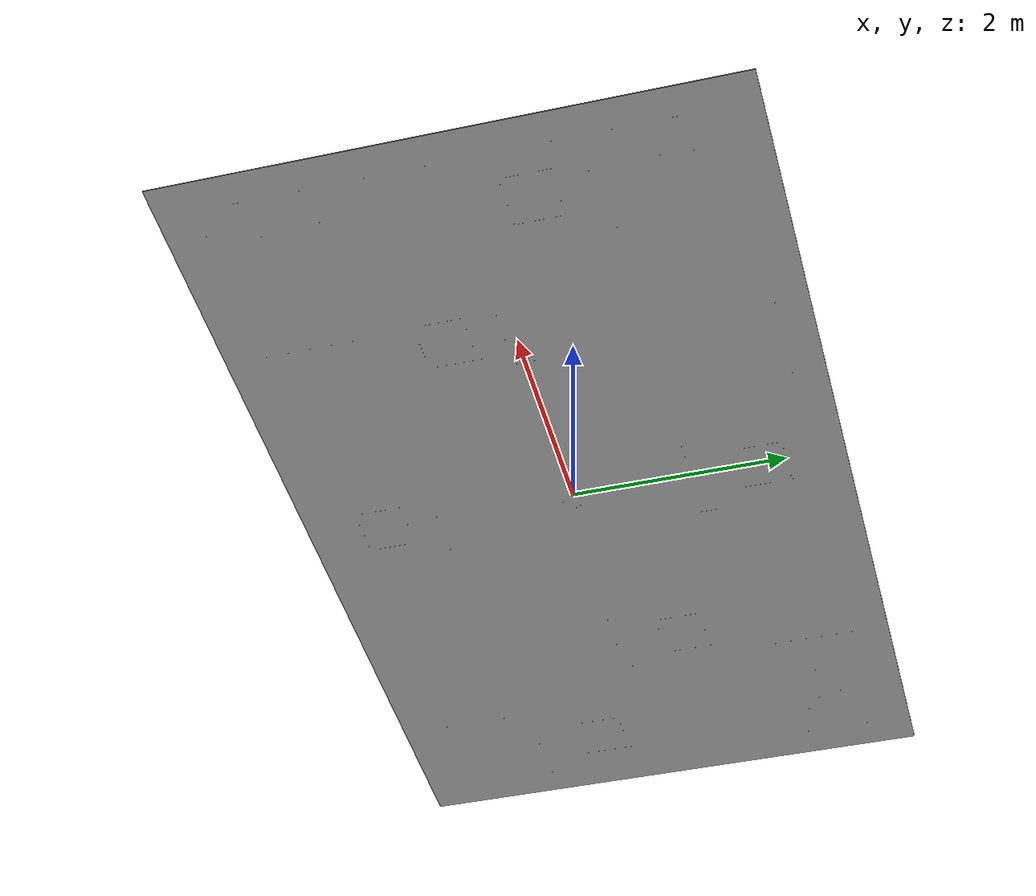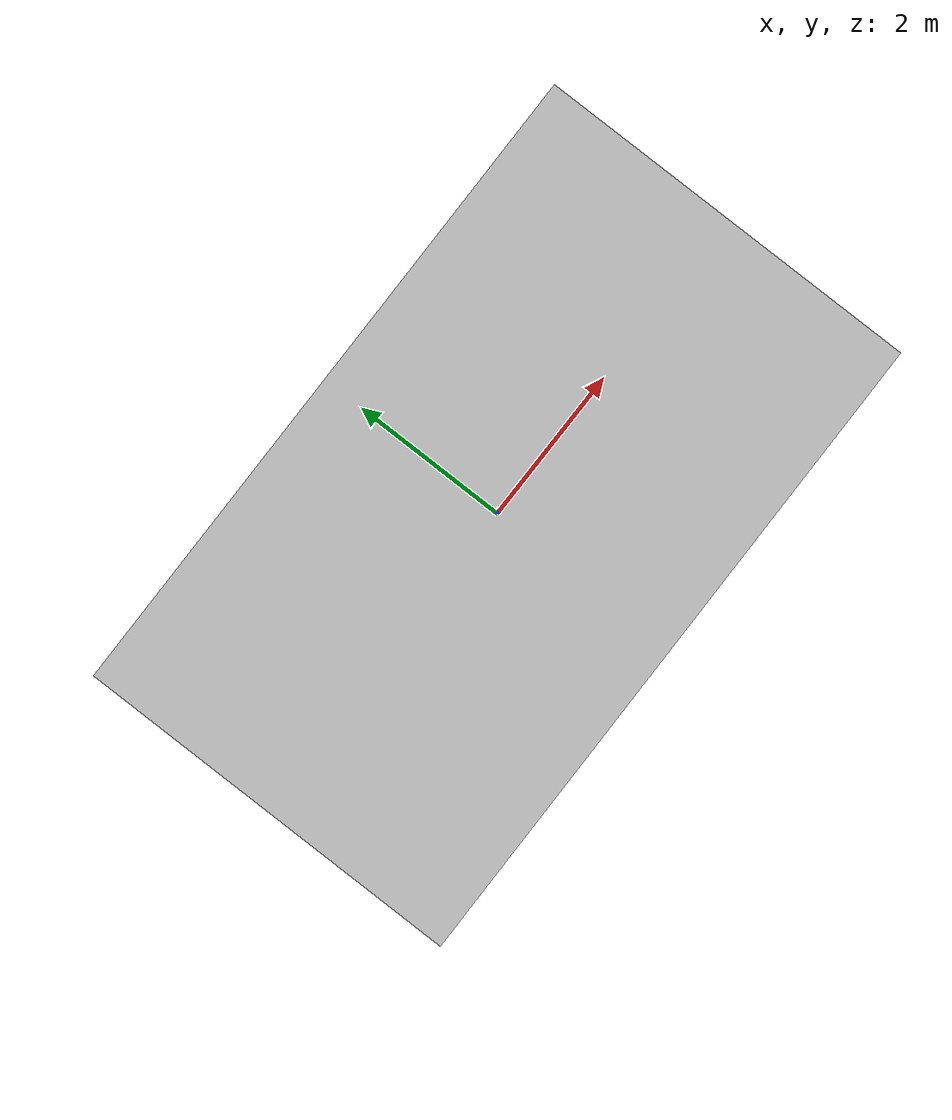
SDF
<?xml version='1.0'?>
<sdf version='1.6'>
  <model name='rmua_2022_arena_floor'>
    <link name='link_0'>
      <inertial>
        <mass>1</mass>
        <inertia>
          <ixx>0.166667</ixx>
          <ixy>0</ixy>
          <ixz>0</ixz>
          <iyy>0.166667</iyy>
          <iyz>0</iyz>
          <izz>0.166667</izz>
        </inertia>
      </inertial>
      <pose frame=''>0 0 0 0 0 0</pose>
      <visual name='visual'>
        <pose frame=''>0 0 0 0 -0 0</pose>
        <geometry>
          <mesh>
            <uri>model://rmua_2022_arena_floor/rmua_arena/rmua_arena_floor.obj</uri>
            <scale>0.001 0.001 0.001</scale>
          </mesh>
        </geometry>
        <transparency>0</transparency>
        <cast_shadows>1</cast_shadows>
      </visual>
    </link>
    <static>1</static>
    <allow_auto_disable>1</allow_auto_disable>
  </model>
</sdf>
